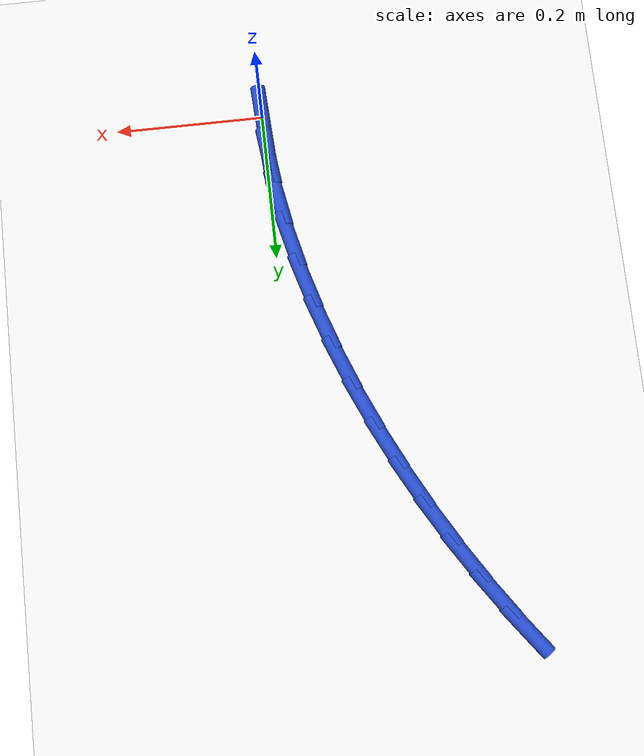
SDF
<sdf version="1.6">
 <world name="default">
  <model name="ground_plane">
   <static>1</static>
   <link name="link">
    <collision name="collision">
     <geometry><plane><normal>0 0 1</normal><size>100 100</size></plane></geometry>
     <surface><friction><ode><mu>100</mu><mu2>50</mu2></ode></friction></surface>
    </collision>
    <visual name="visual">
     <cast_shadows>0</cast_shadows>
     <geometry><plane><normal>0 0 1</normal><size>100 100</size></plane></geometry>
     <material>
      <script><uri>file://media/materials/scripts/gazebo.material</uri><name>Gazebo/WhiteGlow</name></script>
     </material>
    </visual>
   </link>
  </model>
  <model name="line">
   <link name="link_1">
    <pose>-0.003182116799717722 0.060343718222091544 0.01 0 1.57 -1.455068376405315</pose>
    <collision name="collision">
     <geometry><cylinder><radius>0.01</radius><length>0.08</length></cylinder></geometry>
    </collision>
    <visual name="visual">
     <material>
      <script><name>Gazebo/Blue</name><uri>file://media/materials/scripts/gazebo.material</uri></script>
     </material>
     <geometry><cylinder><radius>0.01</radius><length>0.08</length></cylinder></geometry>
    </visual>
   </link>
   <link name="link_2">
    <pose>-0.010159423894215598 0.12036491703980677 0.01 0 1.57 -1.396110431903481</pose>
    <collision name="collision">
     <geometry><cylinder><radius>0.01</radius><length>0.08</length></cylinder></geometry>
    </collision>
    <visual name="visual">
     <material>
      <script><name>Gazebo/Blue</name><uri>file://media/materials/scripts/gazebo.material</uri></script>
     </material>
     <geometry><cylinder><radius>0.01</radius><length>0.08</length></cylinder></geometry>
    </visual>
   </link>
   <link name="link_3">
    <pose>-0.020666432840624693 0.17989986999204802 0.01 0 1.57 -1.341058847353367</pose>
    <collision name="collision">
     <geometry><cylinder><radius>0.01</radius><length>0.08</length></cylinder></geometry>
    </collision>
    <visual name="visual">
     <material>
      <script><name>Gazebo/Blue</name><uri>file://media/materials/scripts/gazebo.material</uri></script>
     </material>
     <geometry><cylinder><radius>0.01</radius><length>0.08</length></cylinder></geometry>
    </visual>
   </link>
   <link name="link_4">
    <pose>-0.034437655196076083 0.23878485061771776 0.01 0 1.57 -1.2896626812289396</pose>
    <collision name="collision">
     <geometry><cylinder><radius>0.01</radius><length>0.08</length></cylinder></geometry>
    </collision>
    <visual name="visual">
     <material>
      <script><name>Gazebo/Blue</name><uri>file://media/materials/scripts/gazebo.material</uri></script>
     </material>
     <geometry><cylinder><radius>0.01</radius><length>0.08</length></cylinder></geometry>
    </visual>
   </link>
   <link name="link_5">
    <pose>-0.05120760251770081 0.29685613245571824 0.01 0 1.57 -1.241625530812187</pose>
    <collision name="collision">
     <geometry><cylinder><radius>0.01</radius><length>0.08</length></cylinder></geometry>
    </collision>
    <visual name="visual">
     <material>
      <script><name>Gazebo/Blue</name><uri>file://media/materials/scripts/gazebo.material</uri></script>
     </material>
     <geometry><cylinder><radius>0.01</radius><length>0.08</length></cylinder></geometry>
    </visual>
   </link>
   <link name="link_6">
    <pose>-0.07071078636262997 0.353949989044952 0.01 0 1.57 -1.1966251012470746</pose>
    <collision name="collision">
     <geometry><cylinder><radius>0.01</radius><length>0.08</length></cylinder></geometry>
    </collision>
    <visual name="visual">
     <material>
      <script><name>Gazebo/Blue</name><uri>file://media/materials/scripts/gazebo.material</uri></script>
     </material>
     <geometry><cylinder><radius>0.01</radius><length>0.08</length></cylinder></geometry>
    </visual>
   </link>
   <link name="link_7">
    <pose>-0.09268171828799456 0.40990269392432127 0.01 0 1.57 -1.1543265273617378</pose>
    <collision name="collision">
     <geometry><cylinder><radius>0.01</radius><length>0.08</length></cylinder></geometry>
    </collision>
    <visual name="visual">
     <material>
      <script><name>Gazebo/Blue</name><uri>file://media/materials/scripts/gazebo.material</uri></script>
     </material>
     <geometry><cylinder><radius>0.01</radius><length>0.08</length></cylinder></geometry>
    </visual>
   </link>
   <link name="link_8">
    <pose>-0.11685490985092568 0.4645505206327286 0.01 0 1.57 -1.1143786323136216</pose>
    <collision name="collision">
     <geometry><cylinder><radius>0.01</radius><length>0.08</length></cylinder></geometry>
    </collision>
    <visual name="visual">
     <material>
      <script><name>Gazebo/Blue</name><uri>file://media/materials/scripts/gazebo.material</uri></script>
     </material>
     <geometry><cylinder><radius>0.01</radius><length>0.08</length></cylinder></geometry>
    </visual>
   </link>
   <link name="link_9">
    <pose>-0.1429665370187842 0.5177315653033812 0.01 0 1.57 -1.075845718580329</pose>
    <collision name="collision">
     <geometry><cylinder><radius>0.01</radius><length>0.08</length></cylinder></geometry>
    </collision>
    <visual name="visual">
     <material>
      <script><name>Gazebo/Blue</name><uri>file://media/materials/scripts/gazebo.material</uri></script>
     </material>
     <geometry><cylinder><radius>0.01</radius><length>0.08</length></cylinder></geometry>
    </visual>
   </link>
   <link name="link_10">
    <pose>-0.17085028239027217 0.5693906976447741 0.01 0 1.57 -1.0378488851081835</pose>
    <collision name="collision">
     <geometry><cylinder><radius>0.01</radius><length>0.08</length></cylinder></geometry>
    </collision>
    <visual name="visual">
     <material>
      <script><name>Gazebo/Blue</name><uri>file://media/materials/scripts/gazebo.material</uri></script>
     </material>
     <geometry><cylinder><radius>0.01</radius><length>0.08</length></cylinder></geometry>
    </visual>
   </link>
   <link name="link_11">
    <pose>-0.20048962337299173 0.6196368185403682 0.01 0 1.57 -1.0006237712348343</pose>
    <collision name="collision">
     <geometry><cylinder><radius>0.01</radius><length>0.08</length></cylinder></geometry>
    </collision>
    <visual name="visual">
     <material>
      <script><name>Gazebo/Blue</name><uri>file://media/materials/scripts/gazebo.material</uri></script>
     </material>
     <geometry><cylinder><radius>0.01</radius><length>0.08</length></cylinder></geometry>
    </visual>
   </link>
   <link name="link_12">
    <pose>-0.23188076754288814 0.6685927689058997 0.01 0 1.57 -0.9644779559876665</pose>
    <collision name="collision">
     <geometry><cylinder><radius>0.01</radius><length>0.08</length></cylinder></geometry>
    </collision>
    <visual name="visual">
     <material>
      <script><name>Gazebo/Blue</name><uri>file://media/materials/scripts/gazebo.material</uri></script>
     </material>
     <geometry><cylinder><radius>0.01</radius><length>0.08</length></cylinder></geometry>
    </visual>
   </link>
   <link name="link_13">
    <pose>-0.26501992247590694 0.7163813896571055 0.01 0 1.57 -0.9296917813341422</pose>
    <collision name="collision">
     <geometry><cylinder><radius>0.01</radius><length>0.08</length></cylinder></geometry>
    </collision>
    <visual name="visual">
     <material>
      <script><name>Gazebo/Blue</name><uri>file://media/materials/scripts/gazebo.material</uri></script>
     </material>
     <geometry><cylinder><radius>0.01</radius><length>0.08</length></cylinder></geometry>
    </visual>
   </link>
   <link name="link_120">
    <pose>3.469446951953614e-18 1.8041124150158794e-16 0.01 0 1.57 -1.517159951861773</pose>
    <collision name="collision">
     <geometry><cylinder><radius>0.01</radius><length>0.08</length></cylinder></geometry>
    </collision>
    <visual name="visual">
     <material>
      <script><name>Gazebo/Blue</name><uri>file://media/materials/scripts/gazebo.material</uri></script>
     </material>
     <geometry><cylinder><radius>0.01</radius><length>0.08</length></cylinder></geometry>
    </visual>
   </link>
   <link name="link_121">
    <pose>-0.0032387415757607063 0.060325388901931856 0.01 0 1.57 -1.5171599518617738</pose>
    <collision name="collision">
     <geometry><cylinder><radius>0.01</radius><length>0.08</length></cylinder></geometry>
    </collision>
    <visual name="visual">
     <material>
      <script><name>Gazebo/Blue</name><uri>file://media/materials/scripts/gazebo.material</uri></script>
     </material>
     <geometry><cylinder><radius>0.01</radius><length>0.08</length></cylinder></geometry>
    </visual>
   </link>
  </model>
 </world>
</sdf>
